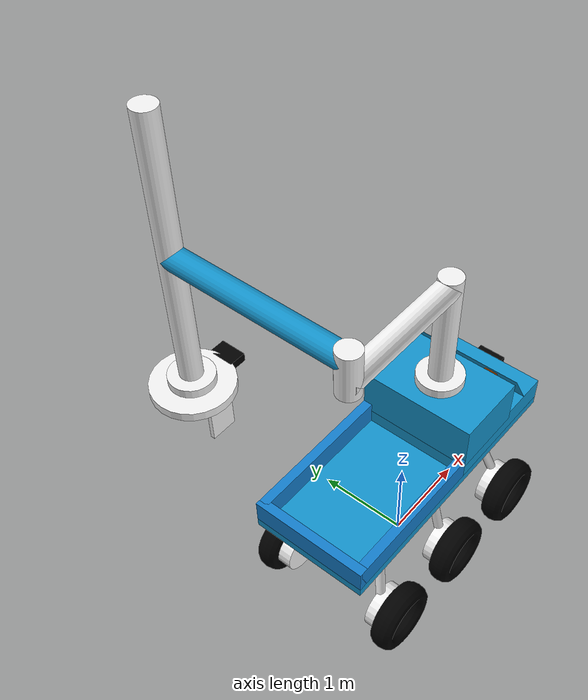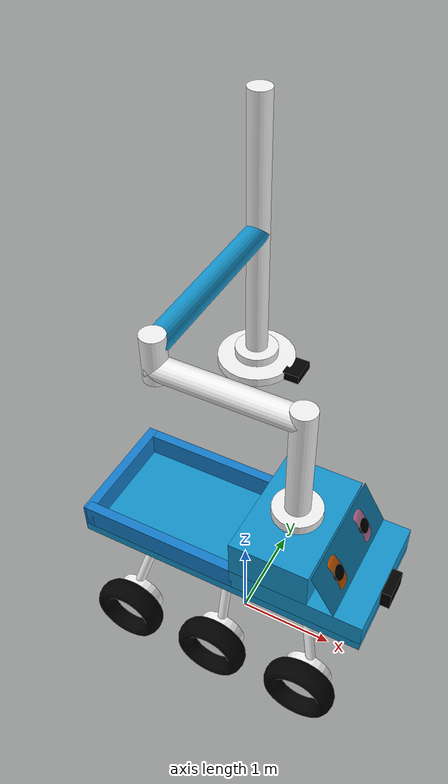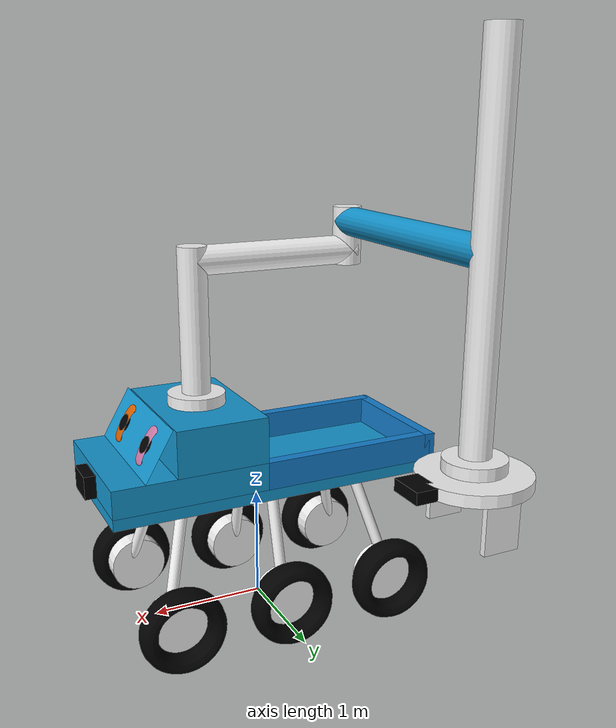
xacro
<?xml version="1.0"?>
<!-- created with Phobos 1.0.1 "Capricious Choutengan" -->
<robot name="rover" xmlns:xacro="http://wiki.ros.org/xacro">
    <!-- includes -->
    <xacro:include filename="$(find rover_description)/urdf/base/robot_base.urdf.xacro"/>
    <xacro:include filename="$(find rover_description)/urdf/wheels/rover_wheel.urdf.xacro"/>
    <xacro:include filename="$(find rover_description)/urdf/arm/scara.urdf.xacro"/>
    <xacro:include filename="$(find rover_description)/urdf/arm/gripper.urdf.xacro"/>
    <xacro:include filename="$(find rover_description)/urdf/ros2_control.urdf.xacro"/>
    <xacro:include filename="$(find rover_description)/urdf/utils/utils.urdf.xacro"/>

    <xacro:include filename="$(find rover_description)/urdf/sensors/camera.urdf.xacro"/>
    <xacro:include filename="$(find rover_description)/urdf/sensors/imu_sensor.urdf.xacro"/>
    <xacro:include filename="$(find rover_description)/urdf/sensors/sensors.urdf.xacro"/>

    <!-- Robot Parts -->

    <xacro:utils/>
    <!-- Base -->
    <xacro:robot_base/>
    <!-- Wheels -->
    <xacro:rover_wheel parent="Base_link"/>

    <!-- Arm -->
    <xacro:scara parent="Base_link"/>
    <xacro:gripper parent="mano_link"/>

    <!-- sensores -->
    <xacro:sensor_camera_front parent="Base_link"/>
    <xacro:sensor_camera_gripper parent="mano_link"/>
    <xacro:sensor_IMU parent="mano_link"/>

    <!-- Gazebo ROS control plugins -->

    <xacro:include filename="$(find rover_description)/urdf/ros2_control.urdf.xacro"/>
    <xacro:arg name="config_controllers" default="$(find rover_description)/config/config.yaml"/>
    <xacro:arg name="update_rate" default="100"/>

    <xacro:ros2_control/>

</robot>

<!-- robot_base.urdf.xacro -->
<!-- created with Phobos 1.0.1 "Capricious Choutengan" -->
<robot name="rover" xmlns:xacro="http://wiki.ros.org/xacro">

  <xacro:macro name="robot_base" >

    <joint name="Base_link_joint" type="fixed">
      <origin rpy="0.00000 0.00000 0.00000" xyz="0.00000 0.00000 1.00000"/>
      <parent link="base_footprint"/>
      <child link="Base_link"/>
    </joint>
    <joint name="Cabeza_link_joint" type="fixed">
      <origin rpy="0.00000 0.00000 0.00000" xyz="0.45000 0.00000 0.96000"/>
      <parent link="Base_link"/>
      <child link="Cabeza_link"/>
    </joint>
    <joint name="Cara_link_joint" type="fixed">
      <origin rpy="0.00000 1.04720 0.00000" xyz="1.00000 0.00000 1.00000"/>
      <parent link="Base_link"/>
      <child link="Cara_link"/>
    </joint>
    <joint name="Cuello_link_joint" type="fixed">
      <origin rpy="0.00000 0.00000 0.00000" xyz="0.75000 0.00000 0.67000"/>
      <parent link="Base_link"/>
      <child link="Cuello_link"/>
    </joint>

    <joint name="Iris2_link_joint" type="fixed">
      <origin rpy="0.00000 1.04720 0.00000" xyz="1.00000 -0.30000 1.00000"/>
      <parent link="Base_link"/>
      <child link="Iris2_link"/>
    </joint>
    <joint name="Ojo1_link_joint" type="fixed">
      <origin rpy="1.57080 1.04720 -0.00000" xyz="1.00000 -0.30000 1.00000"/>
      <parent link="Base_link"/>
      <child link="Ojo1_link"/>
    </joint>
    <joint name="Ojo2_link_joint" type="fixed">
      <origin rpy="1.57080 1.04720 -0.00000" xyz="1.00000 0.30000 1.00000"/>
      <parent link="Base_link"/>
      <child link="Ojo2_link"/>
    </joint>
    <joint name="Rueda1_conexion_link_joint" type="fixed">
      <origin rpy="0.26180 0.00000 0.00000" xyz="0.00000 0.45000 -0.50000"/>
      <parent link="Base_link"/>
      <child link="Rueda1_conexion_link"/>
    </joint>

    <joint name="Rueda2_conexion_link_joint" type="fixed">
      <origin rpy="-0.26180 0.00000 0.00000" xyz="0.00000 -0.45000 -0.50000"/>
      <parent link="Base_link"/>
      <child link="Rueda2_conexion_link"/>
    </joint>

    <joint name="Rueda3_conexion_link_joint" type="fixed">
      <origin rpy="-0.26180 -0.26180 -0.00000" xyz="1.00000 -0.45000 -0.50000"/>
      <parent link="Base_link"/>
      <child link="Rueda3_conexion_link"/>
    </joint>

    <joint name="Rueda4_conexion_link_joint" type="fixed">
      <origin rpy="0.26180 -0.26180 0.00000" xyz="1.00000 0.45000 -0.50000"/>
      <parent link="Base_link"/>
      <child link="Rueda4_conexion_link"/>
    </joint>

    <joint name="Rueda5_conexion_link_joint" type="fixed">
      <origin rpy="0.26180 0.26180 -0.00000" xyz="-1.00000 0.45000 -0.50000"/>
      <parent link="Base_link"/>
      <child link="Rueda5_conexion_link"/>
    </joint>

    <joint name="Rueda6_conexion_link_joint" type="fixed">
      <origin rpy="-0.26180 0.26180 0.00000" xyz="-1.00000 -0.45000 -0.50000"/>
      <parent link="Base_link"/>
      <child link="Rueda6_conexion_link"/>
    </joint>

    <joint name="Tapa1_link_joint" type="fixed">
      <origin rpy="0.00000 0.00000 0.00000" xyz="-0.75000 0.57500 0.67000"/>
      <parent link="Base_link"/>
      <child link="Tapa1_link"/>
    </joint>
    <joint name="Tapa2_link_joint" type="fixed">
      <origin rpy="0.00000 0.00000 0.00000" xyz="-0.75000 -0.57500 0.67000"/>
      <parent link="Base_link"/>
      <child link="Tapa2_link"/>
    </joint>
    <joint name="Tapa3_link_joint" type="fixed">
      <origin rpy="0.00000 0.00000 0.00000" xyz="-1.45000 0.00000 0.67000"/>
      <parent link="Base_link"/>
      <child link="Tapa3_link"/>
    </joint>

    <joint name="iris1_link_joint" type="fixed">
      <origin rpy="0.00000 1.04720 0.00000" xyz="1.00000 0.30000 1.00000"/>
      <parent link="Base_link"/>
      <child link="iris1_link"/>
    </joint>

    <link name="Base_link">
      <collision name="Base_collision">
        <origin rpy="0.00000 0.00000 0.00000" xyz="0.00000 0.00000 0.25000"/>
        <geometry>
          <box size="3.00000 1.25000 0.10000"/>
        </geometry>
      </collision>
      <inertial>
        <inertia ixx="1.96563" ixy="0.00000" ixz="0.00000" iyy="11.26250" iyz="0.00000" izz="13.20312"/>
        <origin rpy="0.00000 0.00000 0.00000" xyz="0.00000 0.00000 0.25000"/>
        <mass value="15.00000"/>
      </inertial>
      <visual name="Base">
        <origin rpy="0.00000 0.00000 0.00000" xyz="0.00000 0.00000 0.25000"/>
        <material name="CArcasa"/>
        <geometry>
          <box size="3.00000 1.25000 0.10000"/>
        </geometry>
      </visual>
    </link>
    <link name="Cabeza_link">
      <collision name="Cabeza_collision">
        <origin rpy="0.00000 0.00000 0.00000" xyz="0.37500 0.00000 -0.38500"/>
        <geometry>
          <box size="1.35000 1.25000 0.75000"/>
        </geometry>
      </collision>
      <inertial>
        <inertia ixx="0.30208" ixy="0.00000" ixz="0.00000" iyy="0.17667" iyz="0.00000" izz="0.39542"/>
        <origin rpy="0.00000 0.00000 0.00000" xyz="0.00000 0.00000 -0.26000"/>
        <mass value="2.00000"/>
      </inertial>
      <visual name="Cabeza">
        <origin rpy="0.00000 0.00000 0.00000" xyz="0.10000 0.00000 -0.26000"/>
        <material name="CArcasa"/>
        <geometry>
          <box size="0.80000 1.25000 0.50000"/>
        </geometry>
      </visual>
    </link>
    <link name="Cara_link">
      <collision name="Cara_collision">
        <origin rpy="0.00000 0.00000 0.00000" xyz="0.26651 0.00000 -0.03840"/>
        <geometry>
          <box size="0.50000 1.25000 0.00000"/>
        </geometry>
      </collision>
      <visual name="Cara">
        <origin rpy="0.00000 0.00000 0.00000" xyz="0.26651 0.00000 -0.03840"/>
        <material name="CArcasa"/>
        <geometry>
          <mesh filename="file://$(find rover_description)/meshes/dae/Plane.dae" scale="0.25000 0.62500 1.00000"/>
        </geometry>
      </visual>
    </link>
    <link name="Cuello_link">
      <collision name="Cuello_collision">
        <origin rpy="0.00000 0.00000 0.00000" xyz="0.07500 0.00000 -0.25000"/>
        <geometry>
          <box size="1.35000 1.25000 0.25000"/>
        </geometry>
      </collision>
      <inertial>
        <inertia ixx="0.13542" ixy="0.00000" ixz="0.00000" iyy="0.19271" iyz="0.00000" izz="0.31771"/>
        <origin rpy="0.00000 0.00000 0.00000" xyz="0.00000 0.00000 -0.25000"/>
        <mass value="1.00000"/>
      </inertial>
      <visual name="Cuello">
        <origin rpy="0.00000 0.00000 0.00000" xyz="0.07500 0.00000 -0.25000"/>
        <material name="CArcasa"/>
        <geometry>
          <box size="1.35000 1.25000 0.25000"/>
        </geometry>
      </visual>
    </link>
    <link name="Iris2_link">
      <inertial>
        <inertia ixx="0.00013" ixy="0.00000" ixz="0.00003" iyy="0.00008" iyz="0.00000" izz="0.00010"/>
        <origin rpy="0.00000 0.00000 0.00000" xyz="0.21651 0.00000 -0.12500"/>
        <mass value="0.05000"/>
      </inertial>
      <visual name="Iris2">
        <origin rpy="0.00000 0.00000 0.00000" xyz="0.26651 0.00000 -0.03840"/>
        <material name="Ruedas"/>
        <geometry>
          <cylinder radius="0.07500" length="0.05000"/>
        </geometry>
      </visual>
    </link>
    <link name="Ojo1_link">
      <inertial>
        <inertia ixx="0.00034" ixy="-0.00000" ixz="0.00016" iyy="0.00039" iyz="0.00000" izz="0.00015"/>
        <origin rpy="0.00000 0.00000 0.00000" xyz="0.21651 -0.12500 0.00000"/>
        <mass value="0.05000"/>
      </inertial>
      <visual name="Ojo1">
        <origin rpy="0.00000 0.00000 0.00000" xyz="0.26651 -0.03840 -0.00000"/>
        <geometry>
          <mesh filename="file://$(find rover_description)/meshes/dae/Torus.007.dae" scale="0.14000 0.02000 0.30000"/>
        </geometry>
      </visual>
    </link>
    <link name="Ojo2_link">
      <inertial>
        <inertia ixx="0.00034" ixy="-0.00000" ixz="0.00016" iyy="0.00039" iyz="0.00000" izz="0.00015"/>
        <origin rpy="0.00000 0.00000 0.00000" xyz="0.21651 -0.12500 0.00000"/>
        <mass value="0.05000"/>
      </inertial>
      <visual name="Ojo2">
        <origin rpy="0.00000 0.00000 0.00000" xyz="0.26651 -0.03840 -0.00000"/>
        <geometry>
          <mesh filename="file://$(find rover_description)/meshes/dae/Torus.008.dae" scale="0.14000 0.02000 0.30000"/>
        </geometry>
      </visual>
    </link>
    <link name="Rueda1_conexion_link">
      <collision name="Rueda1_conexion_collision">
        <origin rpy="-0.00000 0.00000 0.00000" xyz="0.00000 0.02588 0.09659"/>
        <geometry>
          <cylinder radius="0.05000" length="1.00000"/>
        </geometry>
      </collision>
      <inertial>
        <inertia ixx="0.16792" ixy="0.00000" ixz="0.00000" iyy="0.16293" iyz="0.02829" izz="0.00749"/>
        <origin rpy="0.00000 0.00000 0.00000" xyz="0.00000 0.05209 0.29544"/>
        <mass value="2.00000"/>
      </inertial>
      <visual name="Rueda1_conexion">
        <origin rpy="-0.00000 0.00000 0.00000" xyz="0.00000 0.05209 0.29544"/>
        <material name="Barras"/>
        <geometry>
          <cylinder radius="0.05000" length="1.00000"/>
        </geometry>
      </visual>
    </link>

    <link name="Rueda2_conexion_link">
      <collision name="Rueda2_conexion_collision">
        <origin rpy="0.00000 0.00000 0.00000" xyz="0.00000 -0.02588 0.09659"/>
        <geometry>
          <cylinder radius="0.05000" length="1.00000"/>
        </geometry>
      </collision>
      <inertial>
        <inertia ixx="0.16792" ixy="0.00000" ixz="0.00000" iyy="0.16293" iyz="-0.02829" izz="0.00749"/>
        <origin rpy="0.00000 0.00000 0.00000" xyz="0.00000 -0.05209 0.29544"/>
        <mass value="2.00000"/>
      </inertial>
      <visual name="Rueda2_conexion">
        <origin rpy="0.00000 0.00000 0.00000" xyz="0.00000 -0.05209 0.29544"/>
        <material name="Barras"/>
        <geometry>
          <cylinder radius="0.05000" length="1.00000"/>
        </geometry>
      </visual>
    </link>

    <link name="Rueda3_conexion_link">
      <collision name="Rueda3_conexion_collision">
        <origin rpy="-0.00000 -0.00000 -0.00000" xyz="0.02588 -0.02500 0.09330"/>
        <geometry>
          <cylinder radius="0.05000" length="1.25000"/>
        </geometry>
      </collision>
      <inertial>
        <inertia ixx="0.16792" ixy="0.00000" ixz="0.00000" iyy="0.16293" iyz="-0.02829" izz="0.00749"/>
        <origin rpy="0.00000 0.00000 0.00000" xyz="-0.00000 -0.05209 0.29544"/>
        <mass value="2.00000"/>
      </inertial>
      <visual name="Rueda3_conexion">
        <origin rpy="-0.00000 0.00000 -0.00000" xyz="-0.00000 -0.05209 0.29544"/>
        <material name="Barras"/>
        <geometry>
          <cylinder radius="0.05000" length="1.00000"/>
        </geometry>
      </visual>
    </link>

    <link name="Rueda4_conexion_link">
      <collision name="Rueda4_conexion_collision">
        <origin rpy="0.00000 -0.00000 -0.00000" xyz="0.02588 0.02500 0.09330"/>
        <geometry>
          <cylinder radius="0.05000" length="1.25000"/>
        </geometry>
      </collision>
      <inertial>
        <inertia ixx="0.16792" ixy="-0.00000" ixz="-0.00000" iyy="0.16293" iyz="0.02829" izz="0.00749"/>
        <origin rpy="0.00000 0.00000 0.00000" xyz="0.00000 0.05209 0.29544"/>
        <mass value="2.00000"/>
      </inertial>
      <visual name="Rueda4_conexion">
        <origin rpy="-0.00000 -0.00000 -0.00000" xyz="-0.00000 0.05209 0.29544"/>
        <material name="Barras"/>
        <geometry>
          <cylinder radius="0.05000" length="1.00000"/>
        </geometry>
      </visual>
    </link>

    <link name="Rueda5_conexion_link">
      <collision name="Rueda5_conexion_collision">
        <origin rpy="0.00000 0.00000 -0.00000" xyz="-0.02588 0.02500 0.09330"/>
        <geometry>
          <cylinder radius="0.05000" length="1.25000"/>
        </geometry>
      </collision>
      <inertial>
        <inertia ixx="0.16792" ixy="0.00000" ixz="-0.00000" iyy="0.16293" iyz="0.02829" izz="0.00749"/>
        <origin rpy="0.00000 0.00000 0.00000" xyz="0.00000 0.05209 0.29544"/>
        <mass value="2.00000"/>
      </inertial>
      <visual name="Rueda5_conexion">
        <origin rpy="0.00000 -0.00000 -0.00000" xyz="0.00000 0.05209 0.29544"/>
        <material name="Barras"/>
        <geometry>
          <cylinder radius="0.05000" length="1.00000"/>
        </geometry>
      </visual>
    </link>

    <link name="Rueda6_conexion_link">
      <collision name="Rueda6_conexion_collision">
        <origin rpy="0.00000 -0.00000 0.00000" xyz="-0.00000 -0.02605 0.14772"/>
        <geometry>
          <cylinder radius="0.05000" length="1.00000"/>
        </geometry>
      </collision>
      <inertial>
        <inertia ixx="0.16792" ixy="-0.00000" ixz="-0.00000" iyy="0.16293" iyz="-0.02829" izz="0.00749"/>
        <origin rpy="0.00000 0.00000 0.00000" xyz="0.00000 -0.05209 0.29544"/>
        <mass value="2.00000"/>
      </inertial>
      <visual name="Rueda6_conexion">
        <origin rpy="0.00000 0.00000 0.00000" xyz="0.00000 -0.05209 0.29544"/>
        <material name="Barras"/>
        <geometry>
          <cylinder radius="0.05000" length="1.00000"/>
        </geometry>
      </visual>
    </link>

    <link name="Tapa1_link">
      <collision name="Tapa1_collision">
        <origin rpy="0.00000 0.00000 0.00000" xyz="0.10000 0.00000 -0.25000"/>
        <geometry>
          <box size="1.50000 0.10000 0.25000"/>
        </geometry>
      </collision>
      <inertial>
        <inertia ixx="0.00151" ixy="0.00000" ixz="0.00000" iyy="0.04818" iyz="0.00000" izz="0.04708"/>
        <origin rpy="0.00000 0.00000 0.00000" xyz="0.00000 0.00000 -0.25000"/>
        <mass value="0.25000"/>
      </inertial>
      <visual name="Tapa1">
        <origin rpy="0.00000 0.00000 0.00000" xyz="0.10000 0.00000 -0.25000"/>
        <material name="Tapas"/>
        <geometry>
          <box size="1.60000 0.10000 0.25000"/>
        </geometry>
      </visual>
    </link>
    <link name="Tapa2_link">
      <collision name="Tapa2_collision">
        <origin rpy="0.00000 0.00000 0.00000" xyz="0.10000 0.00000 -0.25000"/>
        <geometry>
          <box size="1.60000 0.10000 0.25000"/>
        </geometry>
      </collision>
      <inertial>
        <inertia ixx="0.00151" ixy="0.00000" ixz="0.00000" iyy="0.04818" iyz="0.00000" izz="0.04708"/>
        <origin rpy="0.00000 0.00000 0.00000" xyz="0.00000 0.00000 -0.25000"/>
        <mass value="0.25000"/>
      </inertial>
      <visual name="Tapa2">
        <origin rpy="0.00000 0.00000 0.00000" xyz="0.10000 0.00000 -0.25000"/>
        <material name="Tapas"/>
        <geometry>
          <box size="1.65000 0.10000 0.25000"/>
        </geometry>
      </visual>
    </link>
    <link name="Tapa3_link">
      <collision name="Tapa3_collision">
        <origin rpy="0.00000 0.00000 0.00000" xyz="0.00000 0.00000 -0.25000"/>
        <geometry>
          <box size="0.10000 1.25000 0.25000"/>
        </geometry>
      </collision>
      <inertial>
        <inertia ixx="0.03385" ixy="0.00000" ixz="0.00000" iyy="0.00151" iyz="0.00000" izz="0.03276"/>
        <origin rpy="0.00000 0.00000 0.00000" xyz="0.00000 0.00000 -0.25000"/>
        <mass value="0.25000"/>
      </inertial>
      <visual name="Tapa3">
        <origin rpy="0.00000 0.00000 0.00000" xyz="0.00000 0.00000 -0.25000"/>
        <material name="Tapas"/>
        <geometry>
          <box size="0.10000 1.25000 0.25000"/>
        </geometry>
      </visual>
    </link>
    <link name="base_footprint"/>

    <link name="iris1_link">
      <inertial>
        <inertia ixx="0.00013" ixy="0.00000" ixz="0.00003" iyy="0.00008" iyz="0.00000" izz="0.00010"/>
        <origin rpy="0.00000 0.00000 0.00000" xyz="0.21651 0.00000 -0.12500"/>
        <mass value="0.05000"/>
      </inertial>
      <visual name="iris1">
        <origin rpy="0.00000 0.00000 0.00000" xyz="0.26651 0.00000 -0.03840"/>
        <material name="Ruedas"/>
        <geometry>
          <cylinder radius="0.07500" length="0.05000"/>
        </geometry>
      </visual>
    </link>

  </xacro:macro>
</robot>

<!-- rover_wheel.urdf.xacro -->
<!-- created with Phobos 1.0.1 "Capricious Choutengan" -->
<robot name="rover" xmlns:xacro="http://wiki.ros.org/xacro">

  <xacro:macro name="rover_wheel"  params="parent">

    <joint name="Rueda1_link_joint" type="revolute">
      <limit lower="-3.14000" upper="3.14000" effort="100.00000" velocity="100.00000"/>
      <origin rpy="0.00000 0.00000 0.00000" xyz="0.00000 -0.00000 -0.25000"/>
      <parent link="Rueda1_llanta_link"/>
      <child link="Rueda1_link"/>
      <axis xyz="0.00000 0.00000 -1.00000"/>
    </joint>

    <transmision name="rueda1_trans">
      <type>transmision_interfaces/SimpleTransmission</type>
      <joint name="Rueda1_link_joint">
        <hardwareInterface> hardware_interface/VelocityJointInterface</hardwareInterface>
      </joint>
      <actuator name ="Rueda1_link_joint_motor">
        <mechanichalReduction>1</mechanichalReduction>
      </actuator>
    </transmision>

    <joint name="Rueda1_llanta_link_joint" type="fixed">
      <origin rpy="1.57080 0.00000 0.00000" xyz="0.00000 0.75000 -0.75000"/>
      <parent link="${parent}"/>
      <child link="Rueda1_llanta_link"/>
    </joint>

    <joint name="Rueda2_link_joint" type="revolute">
      <limit lower="0.00000" upper="0.00000" effort="100.00000" velocity="100.00000"/>
      <origin rpy="0.00000 0.00000 0.00000" xyz="0.00000 0.00000 0.25000"/>
      <parent link="Rueda2_llanta_link"/>
      <child link="Rueda2_link"/>
      <axis xyz="0.00000 0.00000 -1.00000"/>
    </joint>

    <transmision name="rueda2_trans">
      <type>transmision_interfaces/SimpleTransmission</type>
      <joint name="Rueda2_link_joint">
        <hardwareInterface> hardware_interface/VelocityJointInterface</hardwareInterface>
      </joint>
      <actuator name ="Rueda2_link_joint_motor">
        <mechanichalReduction>1</mechanichalReduction>
      </actuator>
    </transmision>

    <joint name="Rueda2_llanta_link_joint" type="fixed">
      <origin rpy="1.57080 0.00000 0.00000" xyz="0.00000 -0.75000 -0.75000"/>
      <parent link="${parent}"/>
      <child link="Rueda2_llanta_link"/>
    </joint>

    <joint name="Rueda3_link_joint" type="revolute">
      <limit lower="-3.14000" upper="3.14000" effort="100.00000" velocity="100.00000"/>
      <origin rpy="0.00000 0.00000 0.00000" xyz="0.00000 0.00000 0.25000"/>
      <parent link="Rueda3_llanta_link"/>
      <child link="Rueda3_link"/>
      <axis xyz="0.00000 0.00000 -1.00000"/>
    </joint>

    <transmision name="rueda3_trans">
      <type>transmision_interfaces/SimpleTransmission</type>
      <joint name="Rueda3_link_joint">
        <hardwareInterface> hardware_interface/VelocityJointInterface</hardwareInterface>
      </joint>
      <actuator name ="Rueda3_link_joint_motor">
        <mechanichalReduction>1</mechanichalReduction>
      </actuator>
    </transmision>

    <joint name="Rueda3_llanta_link_joint" type="fixed">
      <origin rpy="1.57080 0.00000 0.00000" xyz="1.00000 -0.75000 -0.75000"/>
      <parent link="${parent}"/>
      <child link="Rueda3_llanta_link"/>
    </joint>

    <joint name="Rueda4_link_joint" type="revolute">
      <limit lower="-3.14000" upper="3.14000" effort="100.00000" velocity="100.00000"/>
      <origin rpy="0.00000 0.00000 0.00000" xyz="0.00000 -0.00000 -0.25000"/>
      <parent link="Rueda4_llanta_link"/>
      <child link="Rueda4_link"/>
      <axis xyz="0.00000 0.00000 -1.00000"/>
    </joint>

    <transmision name="rueda4_trans">
      <type>transmision_interfaces/SimpleTransmission</type>
      <joint name="Rueda4_link_joint">
        <hardwareInterface> hardware_interface/VelocityJointInterface</hardwareInterface>
      </joint>
      <actuator name ="Rueda4_link_joint_motor">
        <mechanichalReduction>1</mechanichalReduction>
      </actuator>
    </transmision>

    <joint name="Rueda4_llanta_link_joint" type="fixed">
      <origin rpy="1.57080 0.00000 0.00000" xyz="1.00000 0.75000 -0.75000"/>
      <parent link="${parent}"/>
      <child link="Rueda4_llanta_link"/>
    </joint>

    <joint name="Rueda5_link_joint" type="revolute">
      <limit lower="-3.14000" upper="3.14000" effort="100.00000" velocity="100.00000"/>
      <origin rpy="0.00000 0.00000 0.00000" xyz="0.00000 -0.00000 -0.25000"/>
      <parent link="Rueda5_llanta_link"/>
      <child link="Rueda5_link"/>
      <axis xyz="0.00000 0.00000 -1.00000"/>
    </joint>

    <transmision name="rueda5_trans">
      <type>transmision_interfaces/SimpleTransmission</type>
      <joint name="Rueda5_link_joint">
        <hardwareInterface> hardware_interface/VelocityJointInterface</hardwareInterface>
      </joint>
      <actuator name ="Rueda5_link_joint_motor">
        <mechanichalReduction>1</mechanichalReduction>
      </actuator>
    </transmision>

    <joint name="Rueda5_llanta_link_joint" type="fixed">
      <origin rpy="1.57080 0.00000 0.00000" xyz="-1.00000 0.75000 -0.75000"/>
      <parent link="${parent}"/>
      <child link="Rueda5_llanta_link"/>
    </joint>

    <joint name="Rueda6_link_joint" type="revolute">
      <limit lower="-3.14000" upper="3.14000" effort="100.00000" velocity="100.00000"/>
      <origin rpy="0.00000 0.00000 0.00000" xyz="0.00000 0.00000 0.25000"/>
      <parent link="Rueda6_llanta_link"/>
      <child link="Rueda6_link"/>
      <axis xyz="0.00000 0.00000 -1.00000"/>
    </joint>

    <transmision name="rueda6_trans">
      <type>transmision_interfaces/SimpleTransmission</type>
      <joint name="Rueda6_link_joint">
        <hardwareInterface> hardware_interface/VelocityJointInterface</hardwareInterface>
      </joint>
      <actuator name ="Rueda6_link_joint_motor">
        <mechanichalReduction>1</mechanichalReduction>
      </actuator>
    </transmision>

    <joint name="Rueda6_llanta_link_joint" type="fixed">
      <origin rpy="1.57080 0.00000 0.00000" xyz="-1.00000 -0.75000 -0.75000"/>
      <parent link="${parent}"/>
      <child link="Rueda6_llanta_link"/>
    </joint>

    <link name="Rueda1_link">
      <collision name="Rueda1_collision.000">
        <origin rpy="-0.00000 0.00000 0.00000" xyz="0.00000 -0.00000 0.25000"/>
        <geometry>
          <mesh filename="file://$(find rover_description)/meshes/dae/Torus.001.dae" scale="0.30000 0.30000 0.50000"/>
        </geometry>
      </collision>
      <inertial>
        <inertia ixx="0.36066" ixy="0.00000" ixz="0.00000" iyy="0.65979" iyz="0.00000" izz="0.36066"/>
        <origin rpy="0.00000 0.00000 0.00000" xyz="0.00000 -0.00000 0.25000"/>
        <mass value="10.00000"/>
      </inertial>
      <visual name="Rueda1">
        <origin rpy="0.00000 0.00000 0.00000" xyz="0.00000 -0.00000 0.25000"/>
        <material name="Ruedas"/>
        <geometry>
          <mesh filename="file://$(find rover_description)/meshes/dae/Torus.001.dae" scale="0.30000 0.30000 0.50000"/>
        </geometry>
      </visual>
    </link>

    <link name="Rueda1_llanta_link">
      <collision name="Rueda1_llanta_collision">
        <origin rpy="-0.00000 0.00000 0.00000" xyz="0.00000 0.00000 0.15000"/>
        <geometry>
          <cylinder radius="0.25000" length="0.20000"/>
        </geometry>
      </collision>
      <inertial>
        <inertia ixx="0.05688" ixy="0.00000" ixz="0.00000" iyy="0.09375" iyz="0.00000" izz="0.05688"/>
        <origin rpy="0.00000 0.00000 0.00000" xyz="0.00000 0.00000 0.15000"/>
        <mass value="3.00000"/>
      </inertial>
      <visual name="Rueda1_llanta">
        <origin rpy="0.00000 0.00000 0.00000" xyz="0.00000 0.00000 0.15000"/>
        <material name="LLantas"/>
        <geometry>
          <cylinder radius="0.25000" length="0.20000"/>
        </geometry>
      </visual>
    </link>

    <link name="Rueda2_link">
      <collision name="Rueda2_collision">
        <origin rpy="-0.00000 0.00000 0.00000" xyz="0.00000 -0.00000 -0.25000"/>
        <geometry>
          <mesh filename="file://$(find rover_description)/meshes/dae/Torus.002.dae" scale="0.30000 0.30000 0.50000"/>
        </geometry>
      </collision>
      <inertial>
        <inertia ixx="0.36066" ixy="0.00000" ixz="0.00000" iyy="0.65979" iyz="0.00000" izz="0.36066"/>
        <origin rpy="0.00000 0.00000 0.00000" xyz="0.00000 -0.00000 -0.25000"/>
        <mass value="10.00000"/>
      </inertial>
      <visual name="Rueda2">
        <origin rpy="0.00000 0.00000 0.00000" xyz="0.00000 -0.00000 -0.25000"/>
        <material name="Ruedas"/>
        <geometry>
          <mesh filename="file://$(find rover_description)/meshes/dae/Torus.002.dae" scale="0.30000 0.30000 0.50000"/>
        </geometry>
      </visual>
    </link>

    <link name="Rueda2_llanta_link">
      <collision name="Rueda2_llanta_collision">
        <origin rpy="0.00000 0.00000 0.00000" xyz="0.00000 -0.00000 -0.15000"/>
        <geometry>
          <cylinder radius="0.25000" length="0.20000"/>
        </geometry>
      </collision>
      <inertial>
        <inertia ixx="0.05688" ixy="0.00000" ixz="0.00000" iyy="0.09375" iyz="0.00000" izz="0.05688"/>
        <origin rpy="0.00000 0.00000 0.00000" xyz="0.00000 -0.00000 -0.15000"/>
        <mass value="3.00000"/>
      </inertial>
      <visual name="Rueda2_llanta">
        <origin rpy="0.00000 0.00000 0.00000" xyz="0.00000 -0.00000 -0.15000"/>
        <material name="LLantas"/>
        <geometry>
          <cylinder radius="0.25000" length="0.20000"/>
        </geometry>
      </visual>
    </link>

    <link name="Rueda3_link">
      <collision name="Rueda3_collision">
        <origin rpy="-0.00000 0.00000 0.00000" xyz="0.00000 -0.00000 -0.25000"/>
        <geometry>
          <mesh filename="file://$(find rover_description)/meshes/dae/Torus.003.dae" scale="0.30000 0.30000 0.50000"/>
        </geometry>
      </collision>
      <inertial>
        <inertia ixx="0.36066" ixy="0.00000" ixz="0.00000" iyy="0.65979" iyz="0.00000" izz="0.36066"/>
        <origin rpy="0.00000 0.00000 0.00000" xyz="0.00000 -0.00000 -0.25000"/>
        <mass value="10.00000"/>
      </inertial>
      <visual name="Rueda3">
        <origin rpy="0.00000 0.00000 0.00000" xyz="0.00000 -0.00000 -0.25000"/>
        <material name="Ruedas"/>
        <geometry>
          <mesh filename="file://$(find rover_description)/meshes/dae/Torus.003.dae" scale="0.30000 0.30000 0.50000"/>
        </geometry>
      </visual>
    </link>

    <link name="Rueda3_llanta_link">
      <collision name="Rueda3_llanta_collision">
        <origin rpy="0.00000 0.00000 0.00000" xyz="0.00000 -0.00000 -0.15000"/>
        <geometry>
          <cylinder radius="0.25000" length="0.20000"/>
        </geometry>
      </collision>
      <inertial>
        <inertia ixx="0.05688" ixy="0.00000" ixz="0.00000" iyy="0.09375" iyz="0.00000" izz="0.05688"/>
        <origin rpy="0.00000 0.00000 0.00000" xyz="0.00000 -0.00000 -0.15000"/>
        <mass value="3.00000"/>
      </inertial>
      <visual name="Rueda3_llanta">
        <origin rpy="0.00000 0.00000 0.00000" xyz="0.00000 -0.00000 -0.15000"/>
        <material name="LLantas"/>
        <geometry>
          <cylinder radius="0.25000" length="0.20000"/>
        </geometry>
      </visual>
    </link>

    <link name="Rueda4_link">
      <collision name="Rueda4_collision">
        <origin rpy="-0.00000 0.00000 0.00000" xyz="0.00000 -0.00000 0.25000"/>
        <geometry>
          <mesh filename="file://$(find rover_description)/meshes/dae/Torus.006.dae" scale="0.30000 0.30000 0.50000"/>
        </geometry>
      </collision>
      <inertial>
        <inertia ixx="0.36066" ixy="0.00000" ixz="0.00000" iyy="0.65979" iyz="0.00000" izz="0.36066"/>
        <origin rpy="0.00000 0.00000 0.00000" xyz="0.00000 -0.00000 0.25000"/>
        <mass value="10.00000"/>
      </inertial>
      <visual name="Rueda4">
        <origin rpy="0.00000 0.00000 0.00000" xyz="0.00000 -0.00000 0.25000"/>
        <material name="Ruedas"/>
        <geometry>
          <mesh filename="file://$(find rover_description)/meshes/dae/Torus.006.dae" scale="0.30000 0.30000 0.50000"/>
        </geometry>
      </visual>
    </link>

    <link name="Rueda4_llanta_link">
      <collision name="Rueda4_llanta_collision">
        <origin rpy="-0.00000 0.00000 0.00000" xyz="0.00000 0.00000 0.15000"/>
        <geometry>
          <cylinder radius="0.25000" length="0.20000"/>
        </geometry>
      </collision>
      <inertial>
        <inertia ixx="0.05688" ixy="0.00000" ixz="0.00000" iyy="0.09375" iyz="0.00000" izz="0.05688"/>
        <origin rpy="0.00000 0.00000 0.00000" xyz="0.00000 0.00000 0.15000"/>
        <mass value="3.00000"/>
      </inertial>
      <visual name="Rueda4_llanta">
        <origin rpy="0.00000 0.00000 0.00000" xyz="0.00000 0.00000 0.15000"/>
        <material name="LLantas"/>
        <geometry>
          <cylinder radius="0.25000" length="0.20000"/>
        </geometry>
      </visual>
    </link>

    <link name="Rueda5_link">
      <collision name="Rueda5_collision">
        <origin rpy="-0.00000 0.00000 0.00000" xyz="0.00000 -0.00000 0.25000"/>
        <geometry>
          <mesh filename="file://$(find rover_description)/meshes/dae/Torus.004.dae" scale="0.30000 0.30000 0.50000"/>
        </geometry>
      </collision>
      <inertial>
        <inertia ixx="0.36066" ixy="0.00000" ixz="0.00000" iyy="0.65979" iyz="0.00000" izz="0.36066"/>
        <origin rpy="0.00000 0.00000 0.00000" xyz="0.00000 -0.00000 0.25000"/>
        <mass value="10.00000"/>
      </inertial>
      <visual name="Rueda5">
        <origin rpy="0.00000 0.00000 0.00000" xyz="0.00000 -0.00000 0.25000"/>
        <material name="Ruedas"/>
        <geometry>
          <mesh filename="file://$(find rover_description)/meshes/dae/Torus.004.dae" scale="0.30000 0.30000 0.50000"/>
        </geometry>
      </visual>
    </link>

    <link name="Rueda5_llanta_link">
      <collision name="Rueda5_llanta_collision">
        <origin rpy="0.00000 0.00000 0.00000" xyz="0.00000 0.00000 0.15000"/>
        <geometry>
          <cylinder radius="0.25000" length="0.20000"/>
        </geometry>
      </collision>
      <inertial>
        <inertia ixx="0.05688" ixy="0.00000" ixz="0.00000" iyy="0.09375" iyz="0.00000" izz="0.05688"/>
        <origin rpy="0.00000 0.00000 0.00000" xyz="0.00000 0.00000 0.15000"/>
        <mass value="3.00000"/>
      </inertial>
      <visual name="Rueda5_llanta">
        <origin rpy="0.00000 0.00000 0.00000" xyz="0.00000 0.00000 0.15000"/>
        <material name="LLantas"/>
        <geometry>
          <cylinder radius="0.25000" length="0.20000"/>
        </geometry>
      </visual>
    </link>

    <link name="Rueda6_link">
      <collision name="Rueda6_collision">
        <origin rpy="-0.00000 0.00000 0.00000" xyz="0.00000 -0.00000 -0.25000"/>
        <geometry>
          <mesh filename="file://$(find rover_description)/meshes/dae/Torus.005.dae" scale="0.30000 0.30000 0.50000"/>
        </geometry>
      </collision>
      <inertial>
        <inertia ixx="0.36066" ixy="0.00000" ixz="0.00000" iyy="0.65979" iyz="0.00000" izz="0.36066"/>
        <origin rpy="0.00000 0.00000 0.00000" xyz="0.00000 -0.00000 -0.25000"/>
        <mass value="10.00000"/>
      </inertial>
      <visual name="Rueda6">
        <origin rpy="0.00000 0.00000 0.00000" xyz="0.00000 -0.00000 -0.25000"/>
        <material name="Ruedas"/>
        <geometry>
          <mesh filename="file://$(find rover_description)/meshes/dae/Torus.005.dae" scale="0.30000 0.30000 0.50000"/>
        </geometry>
      </visual>
    </link>

    <link name="Rueda6_llanta_link">
      <collision name="Rueda6_llanta_collision">
        <origin rpy="-0.00000 0.00000 0.00000" xyz="0.00000 -0.00000 -0.15000"/>
        <geometry>
          <cylinder radius="0.25000" length="0.20000"/>
        </geometry>
      </collision>
      <inertial>
        <inertia ixx="0.05688" ixy="0.00000" ixz="0.00000" iyy="0.09375" iyz="0.00000" izz="0.05688"/>
        <origin rpy="0.00000 0.00000 0.00000" xyz="0.00000 -0.00000 -0.15000"/>
        <mass value="3.00000"/>
      </inertial>
      <visual name="Rueda6_llanta">
        <origin rpy="0.00000 0.00000 0.00000" xyz="0.00000 -0.00000 -0.15000"/>
        <material name="LLantas"/>
        <geometry>
          <cylinder radius="0.25000" length="0.20000"/>
        </geometry>
      </visual>
    </link>

  </xacro:macro>
</robot>

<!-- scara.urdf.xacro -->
<!-- created with Phobos 1.0.1 "Capricious Choutengan" -->
<robot name="rover" xmlns:xacro="http://wiki.ros.org/xacro">

  <xacro:macro name="scara" params="parent" >

  <joint name="Base_brazo_link_joint" type="fixed">
      <origin rpy="0.00000 0.00000 0.00000" xyz="0.55000 0.00000 1.00000"/>
      <parent link="Base_link"/>
      <child link="Base_brazo_link"/>
    </joint>

    <joint name="d4_link_joint" type="prismatic">
      <limit lower="-1.75000" upper="1.75000" effort="100.00000" velocity="100.00000"/>
      <origin rpy="-1.57080 0.00000 0.00000" xyz="0.00000 -0.00000 -2.00000"/>
      <parent link="l2_link"/>
      <child link="d4_link"/>
      <axis xyz="0.00000 0.00000 1.00000"/>
    </joint>

    <joint name="Cylinder_link_joint" type="fixed">
      <origin rpy="-1.57080 0.00000 0.00000" xyz="0.00000 -0.12500 0.00000"/>
      <parent link="l2_link"/>
      <child link="Cylinder_link"/>
    </joint>

    <joint name="l0_link_joint" type="fixed">
      <origin rpy="0.00000 0.00000 0.00000" xyz="0.00000 0.00000 0.55000"/>
      <parent link="Base_brazo_link"/>
      <child link="l0_link"/>
    </joint>

    <joint name="l1_link_joint" type="revolute">
      <limit lower="-3.14000" upper="3.14000" effort="100.00000" velocity="100.00000"/>
      <origin rpy="-0.00000 1.57080 0.00000" xyz="0.00000 0.00000 1.17500"/>
      <parent link="Base_brazo_link"/>
      <child link="l1_link"/>
      <axis xyz="-1.00000 0.00000 0.00000"/>
    </joint>

    <joint name="l2_link_joint" type="revolute">
      <limit lower="-3.14000" upper="3.14000" effort="100.00000" velocity="100.00000"/>
      <origin rpy="1.57080 -1.57080 0.00000" xyz="-0.25000 0.00000 -1.45000"/>
      <parent link="l1_link"/>
      <child link="l2_link"/>
      <axis xyz="0.00000 1.00000 0.00000"/>
    </joint>
    <joint name="mano_link_joint" type="fixed">
      <origin rpy="-0.00000 0.00000 0.00000" xyz="0.00000 0.00000 -0.11500"/>
      <parent link="muneca_link"/>
      <child link="mano_link"/>
    </joint>
    <joint name="muneca_link_joint" type="revolute">
      <limit lower="-3.14000" upper="3.14000" effort="100.00000" velocity="100.00000"/>
      <origin rpy="-0.00000 0.00000 0.00000" xyz="0.00000 0.00000 -1.56000"/>
      <parent link="d4_link"/>
      <child link="muneca_link"/>
      <axis xyz="0.00000 0.00000 1.00000"/>
    </joint>

    <link name="Base_brazo_link">
      <inertial>
        <inertia ixx="0.00823" ixy="0.00000" ixz="0.00000" iyy="0.00823" iyz="0.00000" izz="0.01562"/>
        <origin rpy="0.00000 0.00000 0.00000" xyz="0.00000 0.00000 0.00000"/>
        <mass value="0.50000"/>
      </inertial>
      <visual name="Base_brazo">
        <origin rpy="0.00000 0.00000 0.00000" xyz="0.00000 0.00000 0.00000"/>
        <material name="Barras"/>
        <geometry>
          <cylinder radius="0.25000" length="0.10000"/>
        </geometry>
      </visual>
    </link>

    <link name="d4_link">
      <collision name="d4_collision">
        <origin rpy="0.00000 0.00000 0.00000" xyz="0.00000 0.00000 0.00000"/>
        <geometry>
          <cylinder radius="0.12500" length="3.00000"/>
        </geometry>
      </collision>
      <inertial>
        <inertia ixx="0.37695" ixy="0.00000" ixz="0.00000" iyy="0.37695" iyz="0.00000" izz="0.00391"/>
        <origin rpy="0.00000 0.00000 0.00000" xyz="0.00000 0.00000 0.00000"/>
        <mass value="0.50000"/>
      </inertial>
      <visual name="d4">
        <origin rpy="0.00000 0.00000 0.00000" xyz="0.00000 0.00000 0.00000"/>
        <material name="Barras"/>
        <geometry>
          <cylinder radius="0.12500" length="3.00000"/>
        </geometry>
      </visual>
    </link>

    <link name="l0_link">
      <collision name="l0_collision">
        <origin rpy="0.00000 0.00000 0.00000" xyz="0.00000 0.00000 0.00000"/>
        <geometry>
          <cylinder radius="0.12500" length="1.50000"/>
        </geometry>
      </collision>
      <inertial>
        <inertia ixx="0.09570" ixy="0.00000" ixz="0.00000" iyy="0.09570" iyz="0.00000" izz="0.00391"/>
        <origin rpy="0.00000 0.00000 0.00000" xyz="0.00000 0.00000 0.00000"/>
        <mass value="0.50000"/>
      </inertial>
      <visual name="l0">
        <origin rpy="0.00000 0.00000 0.00000" xyz="0.00000 0.00000 0.00000"/>
        <material name="Barras"/>
        <geometry>
          <cylinder radius="0.12500" length="1.50000"/>
        </geometry>
      </visual>
    </link>

    <link name="l1_link">
      <collision name="l1_collision">
        <origin rpy="0.00000 0.00000 0.00000" xyz="-0.00000 0.00000 -0.75000"/>
        <geometry>
          <cylinder radius="0.12500" length="1.50000"/>
        </geometry>
      </collision>
      <inertial>
        <inertia ixx="0.00391" ixy="0.00000" ixz="0.00000" iyy="0.09570" iyz="0.00000" izz="0.09570"/>
        <origin rpy="0.00000 0.00000 0.00000" xyz="-0.00000 0.00000 -0.75000"/>
        <mass value="0.50000"/>
      </inertial>
      <visual name="l1">
        <origin rpy="0.00000 -0.00000 0.00000" xyz="-0.00000 0.00000 -0.75000"/>
        <material name="Barras"/>
        <geometry>
          <cylinder radius="0.12500" length="1.50000"/>
        </geometry>
      </visual>
    </link>

    <link name="l2_link">
      <collision name="l2_collision">
        <origin rpy="0.00000 0.00000 0.00000" xyz="0.00000 -0.00000 -1.00000"/>
        <geometry>
          <cylinder radius="0.12500" length="1.00000"/>
        </geometry>
      </collision>
      <inertial>
        <inertia ixx="0.16862" ixy="0.00000" ixz="0.00000" iyy="0.00391" iyz="-0.00000" izz="0.16862"/>
        <origin rpy="0.00000 0.00000 0.00000" xyz="0.00000 -0.00000 -1.00000"/>
        <mass value="0.50000"/>
      </inertial>
      <visual name="l2">
        <origin rpy="0.00000 0.00000 0.00000" xyz="0.00000 -0.00000 -1.00000"/>
        <material name="CArcasa"/>
        <geometry>
          <cylinder radius="0.12500" length="2.00000"/>
        </geometry>
      </visual>
    </link>
    <link name="mano_link">
      <collision name="mano_collision">
        <origin rpy="0.00000 0.00000 0.00000" xyz="0.00000 0.00000 0.00000"/>
        <geometry>
          <cylinder radius="0.45000" length="0.10000"/>
        </geometry>
      </collision>
      <inertial>
        <inertia ixx="0.01544" ixy="0.00000" ixz="0.00000" iyy="0.01544" iyz="0.00000" izz="0.03037"/>
        <origin rpy="0.00000 0.00000 0.00000" xyz="0.00000 0.00000 0.00000"/>
        <mass value="0.30000"/>
      </inertial>
      <visual name="mano">
        <origin rpy="0.00000 0.00000 0.00000" xyz="0.00000 0.00000 0.00000"/>
        <material name="Barras"/>
        <geometry>
          <cylinder radius="0.45000" length="0.10000"/>
        </geometry>
      </visual>
    </link>
    <link name="muneca_link">
      <collision name="muneca_collision">
        <origin rpy="0.00000 0.00000 0.00000" xyz="0.00000 0.00000 0.00000"/>
        <geometry>
          <cylinder radius="0.25000" length="0.10000"/>
        </geometry>
      </collision>
      <inertial>
        <inertia ixx="0.00823" ixy="0.00000" ixz="0.00000" iyy="0.00823" iyz="0.00000" izz="0.01562"/>
        <origin rpy="0.00000 0.00000 0.00000" xyz="0.00000 0.00000 0.00000"/>
        <mass value="0.50000"/>
      </inertial>
      <visual name="muneca">
        <origin rpy="0.00000 0.00000 0.00000" xyz="0.00000 0.00000 0.00000"/>
        <material name="Barras"/>
        <geometry>
          <cylinder radius="0.25000" length="0.10000"/>
        </geometry>
      </visual>
    </link>

    <link name="Cylinder_link">
      <inertial>
        <inertia ixx="0.00618" ixy="0.00000" ixz="0.00000" iyy="0.00618" iyz="0.00000" izz="0.00195"/>
        <origin rpy="0.00000 0.00000 0.00000" xyz="0.00000 0.00000 0.00000"/>
        <mass value="0.25000"/>
      </inertial>
      <visual name="Cylinder">
        <origin rpy="0.00000 0.00000 0.00000" xyz="0.00000 0.00000 0.00000"/>
        <material name="Barras"/>
        <geometry>
          <cylinder radius="0.12500" length="0.50000"/>
        </geometry>
      </visual>
    </link>

  </xacro:macro>
</robot>

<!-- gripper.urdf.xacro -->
<!-- created with Phobos 1.0.1 "Capricious Choutengan" -->
<robot name="rover" xmlns:xacro="http://wiki.ros.org/xacro">

  <xacro:macro name="gripper"  params="parent" >

    <joint name="pinza1_link_joint" type="prismatic">
      <limit lower="0.00000" upper="0.10000" effort="100.00000" velocity="100.00000"/>
      <origin rpy="1.57080 0.00000 0.00000" xyz="0.00000 -0.35000 -0.25000"/>
      <parent link="${parent}"/>
      <child link="pinza1_link"/>
      <axis xyz="0.00000 0.00000 -1.00000"/>
    </joint>
    <joint name="pinza2_link_joint" type="prismatic">
      <limit lower="0.00000" upper="0.10000" effort="100.00000" velocity="100.00000"/>
      <origin rpy="-1.57080 0.00000 0.00000" xyz="0.00000 0.35000 -0.25000"/>
      <parent link="${parent}"/>
      <child link="pinza2_link"/>
      <axis xyz="0.00000 0.00000 -1.00000"/>
    </joint>

    <link name="pinza1_link">
      <collision name="pinza1_collision">
        <origin rpy="-1.57080 0.00000 0.00000" xyz="0.00000 0.00000 0.00000"/>
        <geometry>
          <box size="0.30000 0.05000 0.40000"/>
        </geometry>
      </collision>
      <inertial>
        <inertia ixx="0.00339" ixy="0.00000" ixz="0.00000" iyy="0.00521" iyz="0.00000" izz="0.00193"/>
        <origin rpy="0.00000 0.00000 0.00000" xyz="0.00000 0.00000 0.00000"/>
        <mass value="0.25000"/>
      </inertial>
      <visual name="pinza1">
        <origin rpy="-1.57080 0.00000 0.00000" xyz="0.00000 0.00000 0.00000"/>
        <material name="Barras"/>
        <geometry>
          <box size="0.30000 0.05000 0.40000"/>
        </geometry>
      </visual>
    </link>
    <link name="pinza2_link">
      <collision name="pinza2_collision">
        <origin rpy="1.57080 0.00000 0.00000" xyz="0.00000 0.00000 0.00000"/>
        <geometry>
          <box size="0.30000 0.05000 0.40000"/>
        </geometry>
      </collision>
      <inertial>
        <inertia ixx="0.00339" ixy="0.00000" ixz="0.00000" iyy="0.00521" iyz="0.00000" izz="0.00193"/>
        <origin rpy="0.00000 0.00000 0.00000" xyz="0.00000 0.00000 0.00000"/>
        <mass value="0.25000"/>
      </inertial>
      <visual name="pinza2">
        <origin rpy="1.57080 0.00000 0.00000" xyz="0.00000 0.00000 0.00000"/>
        <material name="Barras"/>
        <geometry>
          <box size="0.30000 0.05000 0.40000"/>
        </geometry>
      </visual>
    </link>

  </xacro:macro>
</robot>

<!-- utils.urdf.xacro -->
<!-- created with Phobos 1.0.1 "Capricious Choutengan" -->
<robot name="rover" xmlns:xacro="http://wiki.ros.org/xacro">

  <xacro:macro name="utils" >

    <material name="Barras">
      <color rgba="0.94902 0.94902 0.94902 1.00000"/>
    </material>
    <material name="CArcasa">
      <color rgba="0.07843 0.58039 0.80000 1.00000"/>
    </material>
    <material name="LLantas">
      <color rgba="0.94902 0.94902 0.94902 1.00000"/>
    </material>
    <material name="Ruedas">
      <color rgba="0.00000 0.00000 0.00000 1.00000"/>
    </material>
    <material name="Tapas">
      <color rgba="0.07843 0.49412 0.80000 1.00000"/>
    </material>

  </xacro:macro>
</robot>

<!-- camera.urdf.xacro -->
<!-- created with Phobos 1.0.1 "Capricious Choutengan" -->
<robot name="rover" xmlns:xacro="http://wiki.ros.org/xacro">

  <xacro:macro name="sensor_camera_front" params="parent" >

    <joint name="Camara_frontal_link_joint" type="fixed">
      <origin rpy="-0.00000 1.57080 0.00000" xyz="1.55000 0.00000 0.40000"/>
      <parent link="${parent}"/>
      <child link="Camara_frontal_link"/>
    </joint>

    <joint name="optical_frame_joint" type="fixed">
      <origin rpy="-0.00000 -1.57080 0.00000" xyz="0.0 0.00000 0.0000"/>
      <parent link="Camara_frontal_link"/>
      <child link="optical_frame"/>
    </joint>

   <link name="Camara_frontal_link">
    <visual name="Camara_frontal">
      <origin rpy="0.00000 -1.57080 0.00000" xyz="-0.00000 0.00000 0.00000"/>
      <material name="Ruedas"/>
      <geometry>
        <box size="0.10000 0.30000 0.20000"/>
      </geometry>
    </visual>
  </link>

  <link name="optical_frame">
  </link>

  <gazebo reference="optical_frame">
    <sensor name="sensor_camera_front" type="camera">
      <visualize>true</visualize>
      <update_rate>30</update_rate>
      <topic>/front_camera/image</topic>
      <camera>
        <horizontal_fov>1.5708</horizontal_fov>
        <image>
          <width>640</width>
          <height>480</height>
          <format>R8G8B8</format>
        </image>
        <clip>
          <near>0.10</near>
          <far>15.0</far>
        </clip>
        <noise>
          <type>gaussian</type>
          <mean>0.0</mean>
          <stddev>0.007</stddev>
        </noise>
        <optical_frame_id>optical_frame</optical_frame_id>
      </camera>
    </sensor>
  </gazebo>

  </xacro:macro>
</robot>

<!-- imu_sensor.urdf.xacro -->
<!-- created with Phobos 1.0.1 "Capricious Choutengan" -->
<robot name="rover" xmlns:xacro="http://wiki.ros.org/xacro">

  <xacro:macro name="sensor_IMU" params="parent" >

  <gazebo reference="IMU_link">
    <sensor name="sensor_IMU" type="imu">
      <always_on>1</always_on>
      <update_rate>30</update_rate>
      <topic>"imu_data"</topic>
    </sensor>
  </gazebo>

  <joint name="IMU_link_joint" type="fixed">
    <origin rpy="0.00000 0.00000 0.00000" xyz="0.00000 0.00000 0.15000"/>
    <parent link="${parent}"/>
    <child link="IMU_link"/>
  </joint>

  <link name="IMU_link">
    <visual name="IMU">
      <origin rpy="0.00000 0.00000 0.00000" xyz="0.00000 0.00000 0.00000"/>
      <material name="Ruedas"/>
      <geometry>
        <box size="0.10000 0.10000 0.10000"/>
      </geometry>
    </visual>
  </link>

  </xacro:macro>
</robot>

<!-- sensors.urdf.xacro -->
<!-- created with Phobos 1.0.1 "Capricious Choutengan" -->
<robot name="rover" xmlns:xacro="http://wiki.ros.org/xacro">

  <xacro:macro name="sensor_camera_gripper"  params="parent">

   <joint name="Sensor_link_joint" type="fixed">
    <origin rpy="-3.14159 -0.00000 -3.14159" xyz="0.50000 0.00000 0.00000"/>
    <parent link="${parent}"/>
    <child link="Sensor_link"/>
  </joint>

  <link name="Sensor_link">
    <visual name="Sensor">
      <origin rpy="3.14159 -1.57080 3.14159" xyz="-0.00000 0.00000 0.00000"/>
      <material name="Ruedas"/>
      <geometry>
        <box size="0.10000 0.30000 0.20000"/>
      </geometry>
    </visual>
  </link>

   <joint name="optical_frame_joint_sensor" type="fixed">
      <origin rpy="-0.00000 -1.57080 0.00000" xyz="0.0 0.00000 0.0000"/>
      <parent link="Sensor_link"/>
      <child link="optical_frame_sensor"/>
    </joint>

  <link name="optical_frame_sensor">
  </link>

  <gazebo reference="optical_frame_sensor">
    <sensor name="sensor_camera_gripper" type="camera">
      <visualize>true</visualize>
      <update_rate>30</update_rate>
      <topic>/arm_camera/image</topic>
      <camera>
        <horizontal_fov>1.5708</horizontal_fov>
        <image>
          <width>640</width>
          <height>480</height>
          <format>R8G8B8</format>
        </image>
        <clip>
          <near>0.10</near>
          <far>15.0</far>
        </clip>
        <noise>
          <type>gaussian</type>
          <mean>0.0</mean>
          <stddev>0.007</stddev>
        </noise>
        <optical_frame_id>optical_frame_sensor</optical_frame_id>
      </camera>
    </sensor>
  </gazebo>

  </xacro:macro>
</robot>
